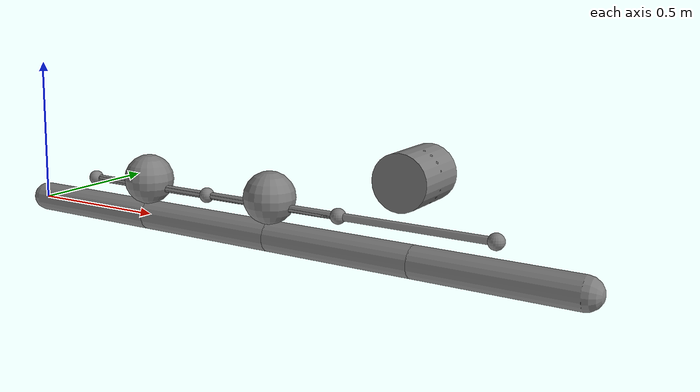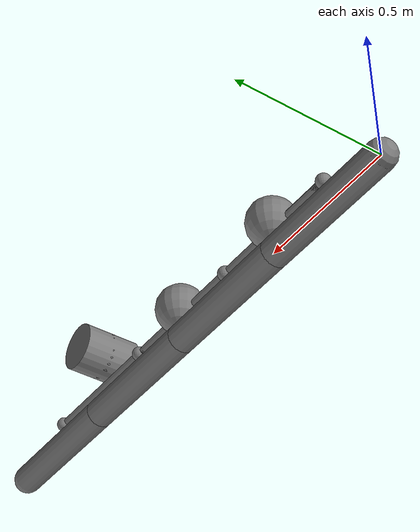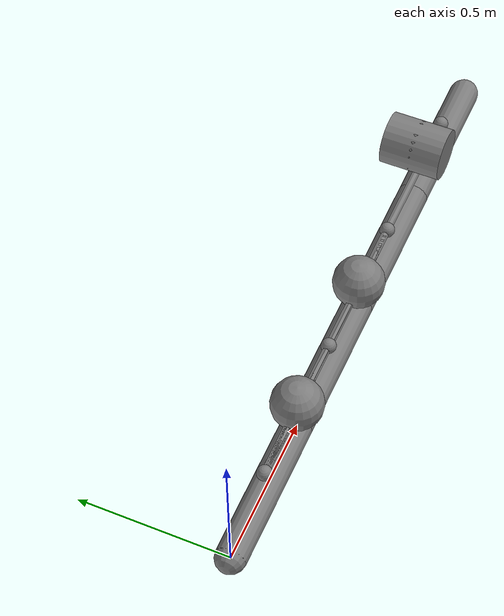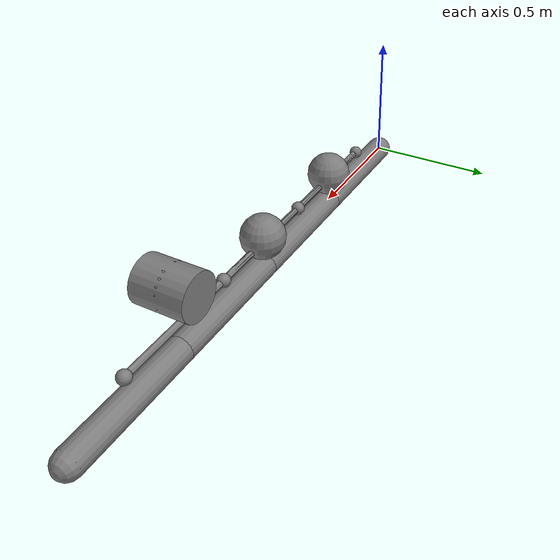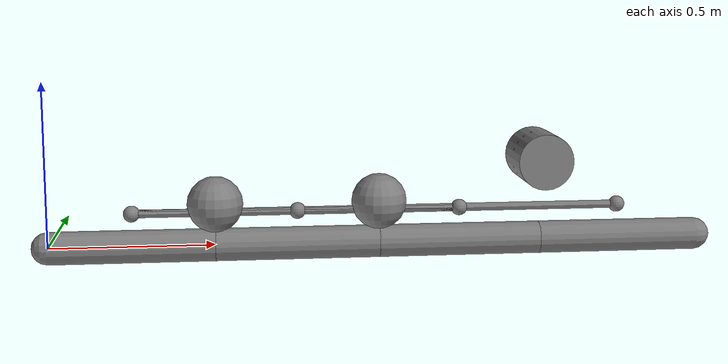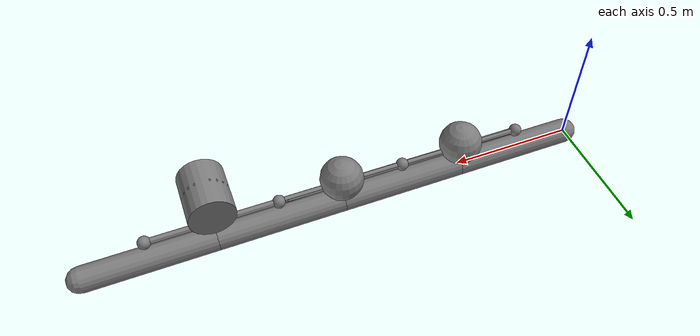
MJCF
<mujoco model="pulley_site">
  <option>
    <flag contact="disable" gravity="disable"/>
  </option>
  <worldbody>
    <body>
      <joint name="joint0" type="hinge" axis="0 1 0"/>
      <geom type="capsule" size="0.05 0.5" fromto="0 0 0 0.5 0 0"/>
      <site name="site0" pos="0.25 0 0.1" size="0.025"/>
      <geom name="sphere0" type="sphere" pos="0.5 0 0.125" size="0.085"/>
      <body pos="0.5 0 0">
        <joint name="joint1" type="hinge" axis="0 1 0"/>
        <geom type="capsule" size="0.05 0.5" fromto="0 0 0 0.5 0 0"/>
        <site name="site1" pos="0.25 0 0.1" size="0.025"/>
        <geom name="sphere1" type="sphere" pos="0.5 0 0.125" size="0.085"/>
        <body pos="0.5 0 0">
          <joint name="joint2" type="hinge" axis="0 1 0"/>
          <geom type="capsule" size="0.05 0.5" fromto="0 0 0 0.5 0 0"/>
          <site name="site2" pos="0.25 0 0.1" size="0.025"/>
          <geom name="cylinder2" type="cylinder" contype="0" conaffinity="0" pos="0.5 0 0.25" euler="90 0 0" size="0.085 0.1"/>
          <geom name="sphere2" type="sphere" contype="0" conaffinity="0" pos="0.5 0 0.25" size="0.085"/>
          <body pos="0.5 0 0">
            <joint name="joint3" type="hinge" axis="0 1 0"/>
            <geom type="capsule" size="0.05 0.5" fromto="0 0 0 0.5 0 0"/>
            <site name="site3" pos="0.25 0 0.1" size="0.025"/>
          </body>
        </body>
      </body>
    </body>
  </worldbody>
  <tendon>
    <spatial width="0.0125">
      <site site="site2"/>
      <site site="site3"/>
    </spatial>
    <spatial width="0.0125">
      <pulley divisor="0.2"/>
      <site site="site2"/>
      <site site="site3"/>
    </spatial>
    <spatial width="0.0125">
      <pulley divisor="3"/>
      <site site="site0"/>
      <site site="site1"/>
      <site site="site2"/>
      <site site="site3"/>
      <pulley divisor="2"/>
      <site site="site0"/>
      <site site="site1"/>
      <site site="site2"/>
      <site site="site3"/>
    </spatial>
    <spatial width="0.0125">
      <pulley divisor="3"/>
      <site site="site0"/>
      <site site="site1"/>
      <site site="site2"/>
      <pulley divisor="7"/>
      <site site="site2"/>
      <site site="site3"/>
      <pulley divisor="2"/>
      <site site="site0"/>
      <site site="site1"/>
      <site site="site2"/>
      <site site="site3"/>
    </spatial>
    <spatial width="0.0125">
      <site site="site0"/>
      <site site="site2"/>
      <site site="site3"/>
    </spatial>
    <spatial width="0.0125">
      <pulley divisor="4"/>
      <site site="site0"/>
      <site site="site2"/>
      <site site="site3"/>
      <pulley divisor="3"/>
      <site site="site0"/>
      <site site="site1"/>
      <site site="site2"/>
      <site site="site3"/>
    </spatial>
  </tendon>
</mujoco>
